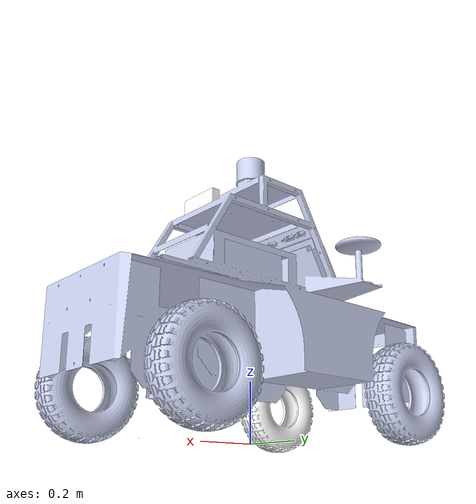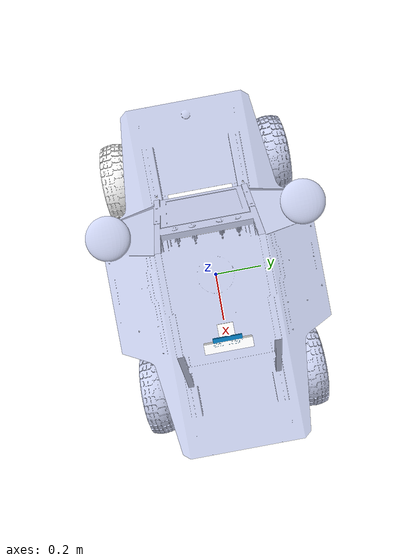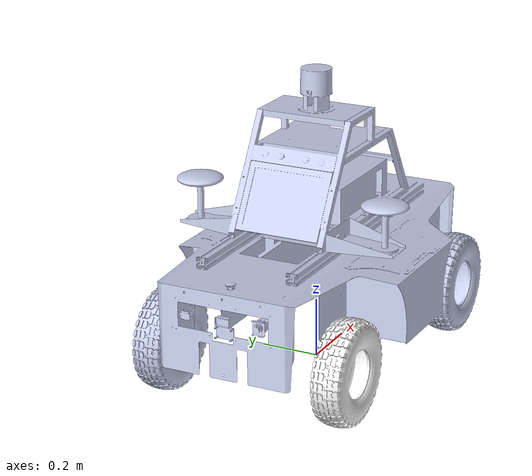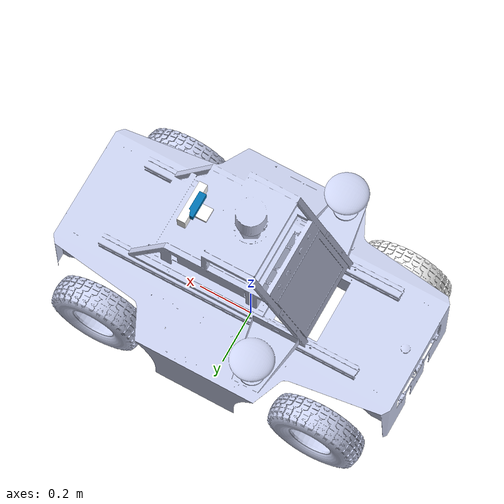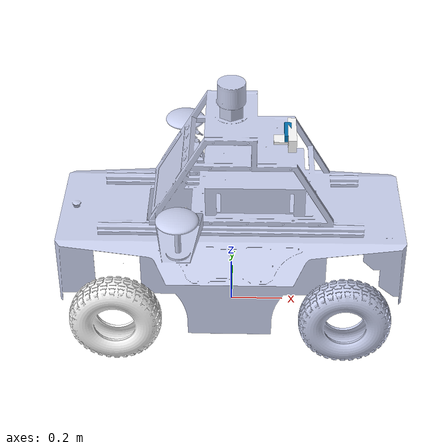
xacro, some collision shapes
<robot name="mycar" xmlns:xacro="http://wiki.ros.org/xacro">
    <xacro:include filename="sensor_test.xacro"/>

    <xacro:include filename="$(find realsense_ros_gazebo)/xacro/tracker.xacro"/>
    <xacro:include filename="$(find realsense_ros_gazebo)/xacro/depthcam.xacro"/>

    <xacro:realsense_d435 sensor_name="d435" parent_link="base_link" rate="10">
    <origin rpy="0 0 0 " xyz="0.20158 0 0.77527"/>
    </xacro:realsense_d435>

</robot>

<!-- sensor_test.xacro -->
<robot name="mycar" xmlns:xacro="http://wiki.ros.org/xacro">
<gazebo>
    <plugin name="gazebo_ros_control"  filename="libgazebo_ros_control.so">
      <robotSimType>steer_bot_hardware_gazebo/SteerBotHardwareGazebo</robotSimType>
      <legacyModeNS>false</legacyModeNS>
    </plugin>
  </gazebo>
  <link
    name="base_link">
    <inertial>
      <origin
        xyz="-0.0070857 -0.00022102 0.54657"
        rpy="0 0 0" />
      <mass
        value="15.051" />
      <inertia
        ixx="0.11965"
        ixy="-1.6769E-06"
        ixz="-0.0034836"
        iyy="0.29664"
        iyz="-2.1065E-06"
        izz="0.36527" />
    </inertial>
    <visual>
      <origin
        xyz="0 0 0"
        rpy="0 0 0" />
      <geometry>
        <mesh
          filename="package://test9/meshes/base_link.STL" />
      </geometry>
      <material
        name="">
        <color
          rgba="0.79216 0.81961 0.93333 1" />
      </material>
    </visual>
    <collision>
      <origin
        xyz="0 0 0"
        rpy="0 0 0" />
      <geometry>
        <mesh
          filename="package://test9/meshes/base_link.STL" />
      </geometry>
    </collision>
  </link>
  <link
    name="front_steer_link">
    <inertial>
      <origin
        xyz="1.1102E-16 -1.3587E-18 -0.000375"
        rpy="0 0 0" />
      <mass
        value="2.0944E-06" />
      <inertia
        ixx="5.4323E-13"
        ixy="-1.0771E-28"
        ixz="-1.0797E-27"
        iyy="5.4323E-13"
        iyz="1.0693E-27"
        izz="8.3776E-13" />
    </inertial>
    <visual>
      <origin
        xyz="0 0 0"
        rpy="0 0 0" />
      <geometry>
        <mesh
          filename="package://test9/meshes/front_steer_link.STL" />
      </geometry>
      <material
        name="">
        <color
          rgba="1 1 1 1" />
      </material>
    </visual>
    <collision>
      <origin
        xyz="0 0 0"
        rpy="0 0 0" />
      <geometry>
        <mesh
          filename="package://test9/meshes/front_steer_link.STL" />
      </geometry>
    </collision>
  </link>
  <joint
    name="front_steer_joint"
    type="revolute">
    <origin
      xyz="0.42 0 0"
      rpy="0 0 0" />
    <parent
      link="base_link" />
    <child
      link="front_steer_link" />
    <axis
      xyz="0 0 1" />
    <limit
      lower="-0.72"
      upper="0.72"
      effort="0"
      velocity="0" />
  </joint>
  <link
    name="front_steer_left_link">
    <inertial>
      <origin xyz="9.44636555644252E-08 -0.000295273745285485 -8.13046296954667E-11" rpy="0 0 0" />
      <mass value="0.296315811300368" />
      <inertia
        ixx="0.000374692013709393"
        ixy="-9.17172260383823E-08"
        ixz="-2.43187512356516E-12"
        iyy="0.000661029987747155"
        iyz="1.9736939507106E-13"
        izz="0.000374691963930348" />
    </inertial>
   <visual>
     <geometry>
       <cylinder length="0.001" radius="0.005"/>
     </geometry>
     <origin rpy="0 0 0"  xyz="0 0 0" />
   </visual>
    <collision>
      <origin xyz="0 0 0" rpy="0 0 0" />
      <geometry>
       <cylinder length="0.001" radius="0.005"/>
      </geometry>
    </collision>

  </link>
  <joint
    name="front_steer_left_joint"
    type="revolute">
    <origin rpy="0 0 0"  xyz="0.42 0.3 0.26937" />
    <parent link="base_link" />
    <child link="front_steer_left_link" />
    <axis xyz="0 0 1" />  <!-- charge steer direction default is 0 0 1-->
    <limit lower="-0.61" upper="0.61" effort="0" velocity="0" />
  </joint>
  <link
    name="front_left_wheel_link">
    <inertial>
      <origin
        xyz="-1.6252E-08 1.9746E-07 -4.9513E-09"
        rpy="0 0 0" />
      <mass
        value="2.3611" />
      <inertia
        ixx="0.025953"
        ixy="3.9277E-10"
        ixz="-1.096E-12"
        iyy="0.045436"
        iyz="9.5777E-09"
        izz="0.025953" />
    </inertial>
    <visual>
      <origin
        xyz="0 0 0"
        rpy="0 0 0" />
      <geometry>
        <mesh
          filename="package://test9/meshes/front_left_wheel_link.STL" />
      </geometry>
      <material
        name="">
        <color
          rgba="0.79216 0.81961 0.93333 1" />
      </material>
    </visual>
    <collision>
      <origin
        xyz="0 0 0"
        rpy="0 0 0" />
      <geometry>
        <mesh
          filename="package://test9/meshes/front_left_wheel_link.STL" />
      </geometry>
    </collision>
  </link>
  <joint
    name="front_left_wheel_joint"
    type="continuous">
    <origin
      xyz="0 0 -0.1"
      rpy="0 0 0" />
    <parent
      link="front_steer_left_link" />
    <child
      link="front_left_wheel_link" />
    <axis
      xyz="0 1 0" />
  </joint>
  <link
    name="front_steer_right_link">
    <inertial>
      <origin xyz="9.44636555644252E-08 -0.000295273745285485 -8.13046296954667E-11" rpy="0 0 0" />
      <mass value="0.296315811300368" />
      <inertia
        ixx="0.000374692013709393"
        ixy="-9.17172260383823E-08"
        ixz="-2.43187512356516E-12"
        iyy="0.000661029987747155"
        iyz="1.9736939507106E-13"
        izz="0.000374691963930348" />
    </inertial>
   <visual>
     <geometry>
       <cylinder length="0.001" radius="0.005"/>
     </geometry>
     <origin rpy="0 0 0"  xyz="0 0 0" />
     <material name="">
          <color rgba="0.792156862745098 0.819607843137255 0.933333333333333 1" />
     </material>
   </visual>
   <collision>
      <origin
        xyz="0 0 0"
        rpy="0 0 0" />
      <geometry>
       <cylinder length="0.001" radius="0.005"/>
      </geometry>
    </collision>

  </link>
  <joint
    name="front_steer_right_joint"
    type="revolute">
    <origin rpy="0 0 0"  xyz="0.42 -0.31 0.26937" />
    <parent link="base_link" />
    <child link="front_steer_right_link" />
    <axis xyz="0 0 1" />     <!-- charge steer direction default is 0 0 1-->
    <limit lower="-0.61" upper="0.61" effort="0" velocity="0" />
  </joint>
  <link
    name="front_right_wheel_link">
    <inertial>
      <origin
        xyz="1.6252E-08 -1.9746E-07 -4.9515E-09"
        rpy="0 0 0" />
      <mass
        value="2.3611" />
      <inertia
        ixx="0.025953"
        ixy="3.9279E-10"
        ixz="9.4373E-13"
        iyy="0.045436"
        iyz="-9.5777E-09"
        izz="0.025953" />
    </inertial>
    <visual>
      <origin
        xyz="0 0 0"
        rpy="0 0 0" />
      <geometry>
        <mesh
          filename="package://test9/meshes/front_right_wheel_link.STL" />
      </geometry>
      <material
        name="">
        <color
          rgba="0.79216 0.81961 0.93333 1" />
      </material>
    </visual>
    <collision>
      <origin
        xyz="0 0 0"
        rpy="0 0 0" />
      <geometry>
        <mesh
          filename="package://test9/meshes/front_right_wheel_link.STL" />
      </geometry>
    </collision>
  </link>
  <joint
    name="front_right_wheel_joint"
    type="continuous">
    <origin
      xyz="0 0 -0.1"
      rpy="0 0 0" />
    <parent
      link="front_steer_right_link" />
    <child
      link="front_right_wheel_link" />
    <axis
      xyz="0 1 0" />
  </joint>
  <link
    name="rear_wheel_link ">
    <inertial>
      <origin
        xyz="-5.5511E-17 -1.3587E-18 -0.000375"
        rpy="0 0 0" />
      <mass
        value="2.0944E-06" />
      <inertia
        ixx="5.4323E-13"
        ixy="-1.0771E-28"
        ixz="-1.0797E-27"
        iyy="5.4323E-13"
        iyz="1.0693E-27"
        izz="8.3776E-13" />
    </inertial>
    <visual>
      <origin
        xyz="0 0 0"
        rpy="0 0 0" />
      <geometry>
        <mesh
          filename="package://test9/meshes/rear_wheel_link .STL" />
      </geometry>
      <material
        name="">
        <color
          rgba="1 1 1 1" />
      </material>
    </visual>
    <collision>
      <origin
        xyz="0 0 0"
        rpy="0 0 0" />
      <geometry>
        <mesh
          filename="package://test9/meshes/rear_wheel_link .STL" />
      </geometry>
    </collision>
  </link>
  <joint
    name="rear_wheel_joint"
    type="continuous">
    <origin
      xyz="-0.42 0 0.16937"
      rpy="0 0 0" />
    <parent
      link="base_link" />
    <child
      link="rear_wheel_link " />
    <axis
      xyz="0 1 0" />
  </joint>
  <link
    name="camera">
    <inertial>
      <origin
        xyz="0.015 -1.4324E-16 2.2204E-15"
        rpy="0 0 0" />
      <mass
        value="0.225" />
      <inertia
        ixx="0.00046875"
        ixy="-4.2534E-18"
        ixz="1.1402E-19"
        iyy="6.375E-05"
        iyz="1.3093E-18"
        izz="0.00043875" />
    </inertial>
    <visual>
      <origin
        xyz="0 0 0"
        rpy="0 0 0" />
      <geometry>
        <mesh
          filename="package://test9/meshes/camera.STL" />
      </geometry>
      <material
        name="">
        <color
          rgba="1 1 1 1" />
      </material>
    </visual>
    <collision>
      <origin
        xyz="0 0 0"
        rpy="0 0 0" />
      <geometry>
        <mesh
          filename="package://test9/meshes/camera.STL" />
      </geometry>
    </collision>
  </link>
  <joint
    name="camera_joint"
    type="fixed">
    <origin
      xyz="0.20158 0 0.77527"
      rpy="0 0 0" />
    <parent
      link="base_link" />
    <child
      link="camera" />
    <axis
      xyz="0 0 0" />
  </joint>
  <link
    name="imu">
    <inertial>
      <origin
        xyz="-2.276E-15 1.7457E-17 0.005"
        rpy="0 0 0" />
      <mass
        value="0.025" />
      <inertia
        ixx="5.4167E-06"
        ixy="2.7218E-22"
        ixz="-1.8636E-20"
        iyy="5.4167E-06"
        iyz="1.7413E-20"
        izz="1.0417E-05" />
    </inertial>
    <visual>
      <origin
        xyz="0 0 0"
        rpy="0 0 0" />
      <geometry>
        <mesh
          filename="package://test9/meshes/imu.STL" />
      </geometry>
      <material
        name="">
        <color
          rgba="1 1 1 1" />
      </material>
    </visual>
    <collision>
      <origin
        xyz="0 0 0"
        rpy="0 0 0" />
      <geometry>
        <mesh
          filename="package://test9/meshes/imu.STL" />
      </geometry>
    </collision>
  </link>
  <joint
    name="imu_joint"
    type="fixed">
    <origin
      xyz="0.17658 0 0.75027"
      rpy="0 0 0" />
    <parent
      link="base_link" />
    <child
      link="imu" />
    <axis
      xyz="0 0 0" />
  </joint>
  <link
    name="left_rear_link">
    <inertial>
      <origin
        xyz="-1.6252E-08 1.9746E-07 -4.9512E-09"
        rpy="0 0 0" />
      <mass
        value="2.3611" />
      <inertia
        ixx="0.025953"
        ixy="3.9266E-10"
        ixz="-8.3216E-13"
        iyy="0.045436"
        iyz="9.5777E-09"
        izz="0.025953" />
    </inertial>
    <visual>
      <origin
        xyz="0 0 0"
        rpy="0 0 0" />
      <geometry>
        <mesh
          filename="package://test9/meshes/left_rear_link.STL" />
      </geometry>
      <material
        name="">
        <color
          rgba="0.79216 0.81961 0.93333 1" />
      </material>
    </visual>
    <collision>
      <origin
        xyz="0 0 0"
        rpy="0 0 0" />
      <geometry>
        <mesh
          filename="package://test9/meshes/left_rear_link.STL" />
      </geometry>
    </collision>
  </link>
  <joint
    name="left_rear_joint"
    type="continuous">
    <origin
      xyz="-0.42 0.31 0.16937"
      rpy="0 0 0" />
    <parent
      link="base_link" />
    <child
      link="left_rear_link" />
    <axis
      xyz="0 1 0" />
    <limit
      lower="-3.14"
      upper="3.14"
      effort="0"
      velocity="0" />
  </joint>
  <link
    name="right_rear_link">
    <inertial>
      <origin
        xyz="1.6252E-08 -1.9746E-07 -4.9512E-09"
        rpy="0 0 0" />
      <mass
        value="2.3611" />
      <inertia
        ixx="0.025953"
        ixy="3.9279E-10"
        ixz="9.4373E-13"
        iyy="0.045436"
        iyz="-9.5777E-09"
        izz="0.025953" />
    </inertial>
    <visual>
      <origin
        xyz="0 0 0"
        rpy="0 0 0" />
      <geometry>
        <mesh
          filename="package://test9/meshes/right_rear_link.STL" />
      </geometry>
      <material
        name="">
        <color
          rgba="1 1 1 1" />
      </material>
    </visual>
    <collision>
      <origin
        xyz="0 0 0"
        rpy="0 0 0" />
      <geometry>
        <mesh
          filename="package://test9/meshes/right_rear_link.STL" />
      </geometry>
    </collision>
  </link>
  <joint
    name="right_rear_joint"
    type="continuous">
    <origin
      xyz="-0.42 -0.31 0.16937"
      rpy="0 0 0" />
    <parent
      link="base_link" />
    <child
      link="right_rear_link" />
    <axis
      xyz="0 1 0" />
    <limit
      lower="-3.14"
      upper="3.14"
      effort="0"
      velocity="0" />
  </joint>
      <!--add color for links -->
  <gazebo reference="base_link">
    <material>Gazebo/DarkGrey </material>
  </gazebo>

  <gazebo reference="front_steer_left_link">
    <material>Gazebo/Road</material>
  </gazebo>

  <gazebo reference="front_steer_right_link">
    <material>Gazebo/Road</material>
  </gazebo>

  <gazebo reference="front_left_wheel_link">
    <material>Gazebo/Road</material>
  </gazebo>

  <gazebo reference="front_right_wheel_link">
    <material>Gazebo/Road</material>
  </gazebo>

  <gazebo reference="left_rear_link">
    <material>Gazebo/Road</material>
  </gazebo>

  <gazebo reference="right_rear_link">
    <material>Gazebo/Road</material>
  </gazebo>

   <gazebo reference="camera">
    <material>Gazebo/Black</material>
  </gazebo>

  <gazebo reference="imu">
    <material>Gazebo/Black</material>
  </gazebo>

    <gazebo reference="imu">
    <gravity>true</gravity>
    <sensor name="imu_sensor" type="imu">
      <always_on>true</always_on>
      <update_rate>100</update_rate>
      <visualize>true</visualize>
      <topic>__default_topic__</topic>
      <plugin filename="libgazebo_ros_imu_sensor.so" name="imu_plugin">
        <topicName>imu</topicName>
        <bodyName>imu</bodyName>
        <updateRateHZ>10.0</updateRateHZ>
        <gaussianNoise>0.0</gaussianNoise>
        <xyzOffset>0 0 0</xyzOffset>
        <rpyOffset>0 0 0</rpyOffset>
        <frameName>imu</frameName>
        <initialOrientationAsReference>false</initialOrientationAsReference>
      </plugin>
      <pose>0 0 0 0 0 0</pose>
    </sensor>
  </gazebo>

</robot>

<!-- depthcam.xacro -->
<robot xmlns:xacro="http://www.ros.org/wiki/xacro">

  <xacro:include filename="$(find realsense_ros_gazebo)/xacro/inertia_calc.xacro"/>

  <!-- INTEL REALSENSE D435 -->

  <xacro:macro name="realsense_d435" params="sensor_name parent_link *origin rate">

    <xacro:property name="d435_cam_depth_to_left_ir_offset" value="0.0"/>
    <xacro:property name="d435_cam_depth_to_right_ir_offset" value="-0.050"/>
    <xacro:property name="d435_cam_depth_to_color_offset" value="0.015"/>
    <xacro:property name="d435_cam_width" value="0.090"/>
    <xacro:property name="d435_cam_height" value="0.025"/>
    <xacro:property name="d435_cam_depth" value="0.02505"/>
    <xacro:property name="d435_cam_mass" value="0.564"/>
    <xacro:property name="d435_cam_mount_from_center_offset" value="0.0149"/>
    <xacro:property name="d435_cam_depth_px" value="${d435_cam_mount_from_center_offset}"/>
    <xacro:property name="d435_cam_depth_py" value="0.0175"/>
    <xacro:property name="d435_cam_depth_pz" value="${d435_cam_height/2}"/>

    <!-- camera body, with origin at bottom screw mount -->
    <joint name="${sensor_name}_joint" type="fixed">
      <xacro:insert_block name="origin" />
      <parent link="${parent_link}"/>
      <child link="${sensor_name}_bottom_screw_frame" />
    </joint>
    <link name="${sensor_name}_bottom_screw_frame"/>

    <joint name="${sensor_name}_link_joint" type="fixed">
      <origin xyz="0 ${d435_cam_depth_py} ${d435_cam_depth_pz}" rpy="0 0 0"/>
      <parent link="${sensor_name}_bottom_screw_frame"/>
      <child link="${sensor_name}_link" />
    </joint>

    <link name="${sensor_name}_link">
      <visual>
        <origin xyz="${d435_cam_mount_from_center_offset} ${-d435_cam_depth_py} 0" rpy="${pi/2} 0 ${pi/2}"/>
        <geometry>
          <mesh filename="package://realsense_ros_gazebo/meshes/realsense_d435.stl" />
        </geometry>
      </visual>
      <collision>
        <origin xyz="0 ${-d435_cam_depth_py} 0" rpy="0 0 0"/>
        <geometry>
          <box size="${d435_cam_depth} ${d435_cam_width} ${d435_cam_height}"/>
        </geometry>
      </collision>
      <inertial>
        <mass value="${d435_cam_mass}" />
        <origin xyz="0 ${-d435_cam_depth_py} 0" rpy="0 0 0"/>
        <xacro:box_inertia m="${d435_cam_mass}" x="${d435_cam_depth}" y="${d435_cam_width}" z="${d435_cam_height}"/>
      </inertial>
    </link>

    <!-- camera depth joints and links -->
    <joint name="${sensor_name}_depth_joint" type="fixed">
      <origin xyz="0 0 0" rpy="0 0 0"/>
      <parent link="${sensor_name}_link"/>
      <child link="${sensor_name}_depth_frame" />
    </joint>
    <link name="${sensor_name}_depth_frame"/>

    <joint name="${sensor_name}_depth_optical_joint" type="fixed">
      <origin xyz="0 0 0" rpy="${-pi/2} 0 ${-pi/2}" />
      <parent link="${sensor_name}_depth_frame" />
      <child link="${sensor_name}_depth_optical_frame" />
    </joint>
    <link name="${sensor_name}_depth_optical_frame"/>

    <!-- camera left IR joints and links -->
    <joint name="${sensor_name}_left_ir_joint" type="fixed">
      <origin xyz="0 ${d435_cam_depth_to_left_ir_offset} 0" rpy="0 0 0" />
      <parent link="${sensor_name}_depth_frame" />
      <child link="${sensor_name}_left_ir_frame" />
    </joint>
    <link name="${sensor_name}_left_ir_frame"/>

    <joint name="${sensor_name}_left_ir_optical_joint" type="fixed">
      <origin xyz="0 0 0" rpy="${-pi/2} 0 ${-pi/2}" />
      <parent link="${sensor_name}_left_ir_frame" />
      <child link="${sensor_name}_left_ir_optical_frame" />
    </joint>
    <link name="${sensor_name}_left_ir_optical_frame"/>

    <!-- camera right IR joints and links -->
    <joint name="${sensor_name}_right_ir_joint" type="fixed">
      <origin xyz="0 ${d435_cam_depth_to_right_ir_offset} 0" rpy="0 0 0" />
      <parent link="${sensor_name}_depth_frame" />
      <child link="${sensor_name}_right_ir_frame" />
    </joint>
    <link name="${sensor_name}_right_ir_frame"/>

    <joint name="${sensor_name}_right_ir_optical_joint" type="fixed">
      <origin xyz="0 0 0" rpy="${-pi/2} 0 ${-pi/2}" />
      <parent link="${sensor_name}_right_ir_frame" />
      <child link="${sensor_name}_right_ir_optical_frame" />
    </joint>
    <link name="${sensor_name}_right_ir_optical_frame"/>

    <!-- camera color joints and links -->
    <joint name="${sensor_name}_color_joint" type="fixed">
      <origin xyz="0 ${d435_cam_depth_to_color_offset} 0" rpy="0 0 0" />
      <parent link="${sensor_name}_depth_frame" />
      <child link="${sensor_name}_color_frame" />
    </joint>
    <link name="${sensor_name}_color_frame"/>

    <joint name="${sensor_name}_color_optical_joint" type="fixed">
      <origin xyz="0 0 0" rpy="${-pi/2} 0 ${-pi/2}" />
      <parent link="${sensor_name}_color_frame" />
      <child link="${sensor_name}_color_optical_frame" />
    </joint>
    <link name="${sensor_name}_color_optical_frame"/>

    <!-- gazebo plugin -->

    <xacro:property name="deg_to_rad" value="0.01745329251994329577" />

    <gazebo reference="${sensor_name}_link">
      <self_collide>0</self_collide>
      <enable_wind>0</enable_wind>
      <kinematic>0</kinematic>
      <gravity>1</gravity>
      <mu2>1</mu2>
      <fdir1>0 0 0</fdir1>
      <kp>1e+13</kp>
      <kd>1</kd>

      <sensor name="${sensor_name}_color" type="camera">
        <camera name="${sensor_name}">
          <horizontal_fov>${69.4*deg_to_rad}</horizontal_fov>
          <image>
            <width>640</width>
            <height>480</height>
            <format>RGB_INT8</format>
          </image>
          <clip>
            <near>0.1</near>
            <far>100</far>
          </clip>
          <noise>
            <type>gaussian</type>
            <mean>0.0</mean>
            <stddev>0.007</stddev>
          </noise>
        </camera>
        <always_on>1</always_on>
        <update_rate>30</update_rate>
        <visualize>1</visualize>
      </sensor>
      <sensor name="${sensor_name}_ired1" type="camera">
        <camera name="${sensor_name}">
          <horizontal_fov>${85.2*deg_to_rad}</horizontal_fov>
          <image>
            <width>1280</width>
            <height>720</height>
            <format>L_INT8</format>
          </image>
          <clip>
            <near>0.1</near>
            <far>100</far>
          </clip>
          <noise>
            <type>gaussian</type>
            <mean>0.0</mean>
            <stddev>0.05</stddev>
          </noise>
        </camera>
        <always_on>1</always_on>
        <update_rate>90</update_rate>
        <visualize>0</visualize>
      </sensor>
      <sensor name="${sensor_name}_ired2" type="camera">
        <camera name="${sensor_name}">
          <horizontal_fov>${85.2*deg_to_rad}</horizontal_fov>
          <image>
            <width>1280</width>
            <height>720</height>
            <format>L_INT8</format>
          </image>
          <clip>
            <near>0.1</near>
            <far>100</far>
          </clip>
          <noise>
            <type>gaussian</type>
            <mean>0.0</mean>
            <stddev>0.05</stddev>
          </noise>
        </camera>
        <always_on>1</always_on>
        <update_rate>90</update_rate>
        <visualize>0</visualize>
      </sensor>
      <sensor name="${sensor_name}_depth" type="depth">
        <camera name="${sensor_name}">
          <horizontal_fov>${58*deg_to_rad}</horizontal_fov>
          <image>
            <width>64</width>
            <height>64</height>
          </image>
          <clip>
            <near>0.1</near>
            <far>10</far>
          </clip>
          <noise>
            <type>gaussian</type>
            <mean>0.0</mean>
            <stddev>0.100</stddev>
          </noise>
        </camera>
        <always_on>1</always_on>
        <update_rate>15</update_rate>
        <visualize>0</visualize>
      </sensor>
    </gazebo>

    <gazebo>
      <plugin name="${sensor_name}" filename="librealsense_gazebo_plugin.so">
        <prefix>${sensor_name}_</prefix>
        <depthUpdateRate>${rate}</depthUpdateRate>
        <colorUpdateRate>${rate}</colorUpdateRate>
        <infraredUpdateRate>${rate}</infraredUpdateRate>
        <depthTopicName>depth/image_raw</depthTopicName>
        <depthCameraInfoTopicName>depth/camera_info</depthCameraInfoTopicName>
        <colorTopicName>color/image_raw</colorTopicName>
        <colorCameraInfoTopicName>color/camera_info</colorCameraInfoTopicName>
        <infrared1TopicName>infra1/image_raw</infrared1TopicName>
        <infrared1CameraInfoTopicName>infra1/camera_info</infrared1CameraInfoTopicName>
        <infrared2TopicName>infra2/image_raw</infrared2TopicName>
        <infrared2CameraInfoTopicName>infra2/camera_info</infrared2CameraInfoTopicName>
        <colorOpticalframeName>${sensor_name}_color_optical_frame</colorOpticalframeName>
        <depthOpticalframeName>${sensor_name}_depth_optical_frame</depthOpticalframeName>
        <infrared1OpticalframeName>${sensor_name}_infrared1_optical_frame</infrared1OpticalframeName>
        <infrared2OpticalframeName>${sensor_name}_infrared2_optical_frame</infrared2OpticalframeName>
        <rangeMinDepth>0.2</rangeMinDepth>
        <rangeMaxDepth>10.0</rangeMaxDepth>
        <pointCloud>false</pointCloud>
        <pointCloudTopicName>depth/color/points</pointCloudTopicName>
        <pointCloudCutoff>0.25</pointCloudCutoff>
        <pointCloudCutoffMax>9.0</pointCloudCutoffMax>
      </plugin>
    </gazebo>

  </xacro:macro>

  <!-- INTEL REALSENSE R200 -->

  <xacro:macro name="realsense_R200" params="sensor_name parent_link rate *origin">

      <link name="${sensor_name}_R200_camera">
          <visual>
              <origin rpy="0 0 0" xyz="0 0 0"/>
              <geometry>
                  <mesh filename="package://realsense_ros_gazebo/meshes/realsense_r200/meshes/realsense.dae"/>
              </geometry>
          </visual>
          <collision>
              <geometry>
                  <box size="0.0078 0.130 0.0192"/>
              </geometry>
          </collision>
          <inertial>
              <mass value="0.0615752"/>
              <origin rpy="0 0 0" xyz="0 0 0"/>
              <inertia ixx="9.108e-05"
                       ixy="0"
                       ixz="0"
                       iyy="2.51e-06"
                       iyz="0"
                       izz="8.931e-05"/>
          </inertial>
      </link>

      <joint name="${sensor_name}_joint" type="fixed">
          <parent link="${parent_link}"/>
          <child link="${sensor_name}_R200_camera"/>
          <xacro:insert_block name="origin"/>
      </joint>

      <link name="${sensor_name}_color" />
      <link name="${sensor_name}_depth" />
      <link name="${sensor_name}_ired1" />
      <link name="${sensor_name}_ired2" />

      <joint name="${sensor_name}_color_joint" type="fixed">
          <parent link="${sensor_name}_R200_camera" />
          <child link="${sensor_name}_color" />
          <origin xyz="0 -0.046 0.004" rpy="${pi/2} ${pi} ${pi/2}"/>
      </joint>

      <joint name="${sensor_name}_depth_joint" type="fixed">
          <parent link="${sensor_name}_R200_camera" />
          <child link="${sensor_name}_depth" />
          <origin xyz="0 -0.03 0.004" rpy="0 0 0"/>
      </joint>

      <joint name="${sensor_name}_ired1_joint" type="fixed">
          <parent link="${sensor_name}_R200_camera" />
          <child link="${sensor_name}_ired1" />
          <origin xyz="0 -0.06 0.004" rpy="0 0 0"/>
      </joint>

      <joint name="${sensor_name}_ired2_joint" type="fixed">
          <parent link="${sensor_name}_R200_camera" />
          <child link="${sensor_name}_ired2" />
          <origin xyz="0 0.01 0.004" rpy="0 0 0"/>
      </joint>

      <gazebo reference="${sensor_name}_R200_camera">

          <self_collide>0</self_collide>
          <enable_wind>0</enable_wind>
          <kinematic>0</kinematic>
          <gravity>1</gravity>
          <mu>1</mu>
          <mu2>1</mu2>
          <fdir1>0 0 0</fdir1>
          <slip1>0</slip1>
          <slip2>0</slip2>
          <kp>1e+13</kp>
          <kd>1</kd>
          <max_vel>0.01</max_vel>
          <min_depth>0</min_depth>

          <sensor name="${sensor_name}_color" type="camera">
              <pose frame="">0 -0.046 0.004 0 0 0</pose>
              <camera name="${sensor_name}_R200_camera">
              <horizontal_fov>1.047</horizontal_fov>
              <image>
                  <width>640</width>
                  <height>480</height>
                  <format>RGB_INT8</format>
              </image>
              <clip>
                  <near>0.1</near>
                  <far>100</far>
              </clip>
              <noise>
                  <type>gaussian</type>
                  <mean>0.0</mean>
                  <stddev>0.007</stddev>
              </noise>
              </camera>
              <always_on>1</always_on>
              <update_rate>${rate}</update_rate>
              <visualize>1</visualize>
          </sensor>
          <sensor name="${sensor_name}_ired1" type="camera">
              <pose frame="">0 -0.06 0.004 0 0 0</pose>
              <camera name="${sensor_name}_R200_camera">
              <horizontal_fov>1.047</horizontal_fov>
              <image>
                  <width>640</width>
                  <height>480</height>
                  <format>L_INT8</format>
              </image>
              <clip>
                  <near>0.1</near>
                  <far>100</far>
              </clip>
              <noise>
                  <type>gaussian</type>
                  <mean>0.0</mean>
                  <stddev>0.05</stddev>
              </noise>
              </camera>
              <always_on>1</always_on>
              <update_rate>${rate}</update_rate>
              <visualize>0</visualize>
          </sensor>
          <sensor name="${sensor_name}_ired2" type="camera">
              <pose frame="">0 0.01 0.004 0 0 0</pose>
              <camera name="${sensor_name}_R200_camera">
              <horizontal_fov>1.047</horizontal_fov>
              <image>
                  <width>640</width>
                  <height>480</height>
                  <format>L_INT8</format>
              </image>
              <clip>
                  <near>0.1</near>
                  <far>100</far>
              </clip>
              <noise>
                  <type>gaussian</type>
                  <mean>0.0</mean>
                  <stddev>0.05</stddev>
              </noise>
              </camera>
              <always_on>1</always_on>
              <update_rate>${rate}</update_rate>
              <visualize>0</visualize>
          </sensor>
          <sensor name="${sensor_name}_depth" type="depth">
              <pose frame="">0 -0.03 0.004 0 0 0</pose>
              <camera name="${sensor_name}_R200_camera">
              <horizontal_fov>1.047</horizontal_fov>
              <image>
                      <width>640</width>
                      <height>480</height>
              </image>
              <clip>
                      <near>0.1</near>
                      <far>100</far>
              </clip>
              <noise>
                      <type>gaussian</type>
                      <mean>0.0</mean>
                      <stddev>0.100</stddev>
              </noise>
              </camera>
              <always_on>1</always_on>
              <update_rate>60</update_rate>
              <visualize>0</visualize>
          </sensor>
      </gazebo>

      <gazebo>
        <plugin name="${sensor_name}" filename="librealsense_gazebo_plugin.so">
          <prefix>${sensor_name}_</prefix>
          <depthUpdateRate>${rate}</depthUpdateRate>
          <colorUpdateRate>${rate}</colorUpdateRate>
          <infraredUpdateRate>${rate}</infraredUpdateRate>
          <depthTopicName>depth/image_raw</depthTopicName>
          <depthCameraInfoTopicName>depth/camera_info</depthCameraInfoTopicName>
          <colorTopicName>color/image_raw</colorTopicName>
          <colorCameraInfoTopicName>color/camera_info</colorCameraInfoTopicName>
          <infrared1TopicName>infra1/image_raw</infrared1TopicName>
          <infrared1CameraInfoTopicName>infra1/camera_info</infrared1CameraInfoTopicName>
          <infrared2TopicName>infra2/image_raw</infrared2TopicName>
          <infrared2CameraInfoTopicName>infra2/camera_info</infrared2CameraInfoTopicName>
          <colorOpticalframeName>${sensor_name}_color_optical_frame</colorOpticalframeName>
          <depthOpticalframeName>${sensor_name}_depth_optical_frame</depthOpticalframeName>
          <infrared1OpticalframeName>${sensor_name}_infrared1_optical_frame</infrared1OpticalframeName>
          <infrared2OpticalframeName>${sensor_name}_infrared2_optical_frame</infrared2OpticalframeName>
          <rangeMinDepth>0.2</rangeMinDepth>
          <rangeMaxDepth>10.0</rangeMaxDepth>
          <pointCloud>false</pointCloud>
          <pointCloudTopicName>depth/color/points</pointCloudTopicName>
          <pointCloudCutoff>0.25</pointCloudCutoff>
          <pointCloudCutoffMax>9.0</pointCloudCutoffMax>
        </plugin>
      </gazebo>

  </xacro:macro>

</robot>
